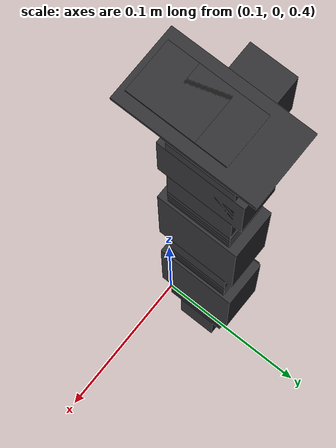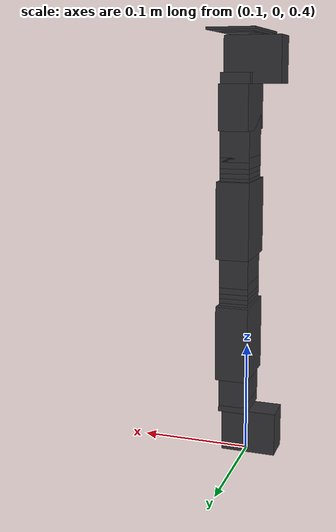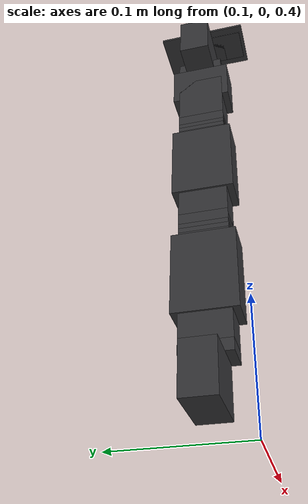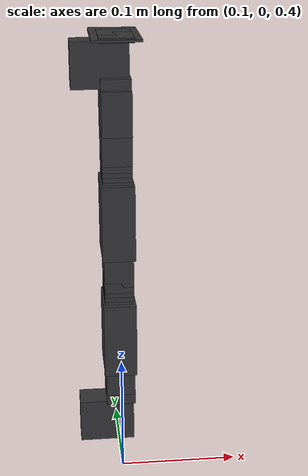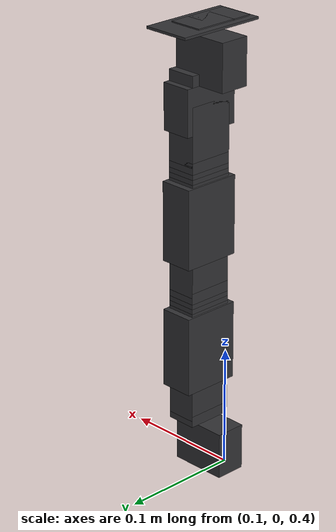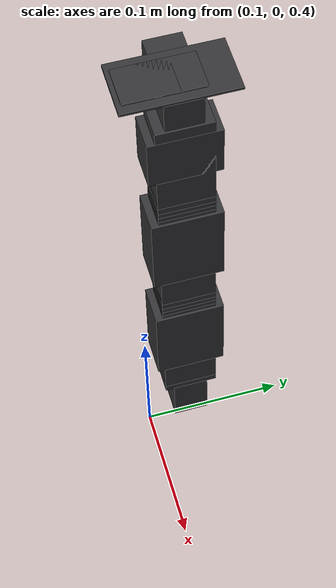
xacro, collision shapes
<?xml version="1.0"?>
<!-- Describe URDF for PhantomX Pincher Arm -->
<robot name="turtlebot_arm" xmlns:xacro="http://ros.org/wiki/xacro">

    <!-- We can configure joints velocity limit and lower/upper limits
          to allow access to different operational areas, e.g. left handed vs. right handed robot -->
    <xacro:property name="joints_vlimit" value="1.571"/>
    <xacro:property name="pan_llimit" value="-2.617"/>
    <xacro:property name="pan_ulimit" value="2.617"/>
    <xacro:property name="shoulder_llimit" value="-2.2"/>
    <xacro:property name="shoulder_ulimit" value="2.16"/>
    <xacro:property name="elbow_llimit" value="-2.42"/>
    <xacro:property name="elbow_ulimit" value="2.38"/>
    <xacro:property name="wrist_llimit" value="-1.72"/>
    <xacro:property name="wrist_ulimit" value="1.68"/>

    <!-- Included URDF Files -->

    <xacro:include filename="$(find gatlin)/urdf/pincher_arm.urdf"/>

    <!-- As we don't have here a turtlebot base, add a base_link link as its location reference -->
    <link name="base_link"/>

    <!-- Turtlebot arm macro -->
    <turtlebot_arm parent="base_link" color="Gray" gripper_color="Gray"   pincher_gripper="true" turtlebot_gripper="false">
      <!-- Place the "floating" arm at the location it should be if mounted on a turtlebot,
           as pick and place and other demos assume this location -->
      <origin xyz="0.1 0.03 0.435"/>
    </turtlebot_arm>
</robot>

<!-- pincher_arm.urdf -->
<!-- |    This document was autogenerated by xacro from pincher_arm.urdf.xacro         | -->
<!-- |    EDITING THIS FILE BY HAND IS NOT RECOMMENDED                                 | -->
<!-- Describe URDF for PhantomX Pincher Arm -->
<robot name="turtlebot_arm" xmlns:xacro="http://ros.org/wiki/xacro">
  <!-- We can configure joints velocity limit and lower/upper limits
          to allow access to different operational areas, e.g. left handed vs. right handed robot -->
  <!-- Included URDF Files -->
  <!-- Pincher arm is same as Turtlebot -->
  <material name="White">
    <color rgba="0.87 0.90 0.87 1.0"/>
  </material>
  <material name="Black">
    <color rgba="0.08 0.08 0.08 1.0"/>
  </material>
  <material name="Gray">
    <color rgba="0.2 0.2 0.21 1.0"/>
  </material>

  <xacro:macro name="turtlebot_arm" params="parent color pincher_gripper turtlebot_gripper gripper_color *origin">
    <!-- Turtlebot arm macro -->
    <link name="arm_base_link"/>
    <joint name="arm_base_joint" type="fixed">
      <insert_block name="origin"/>
      <parent link="${parent}"/>
      <child link="arm_base_link"/>
    </joint>

    <link name="gripper_link"/>
    <joint name="gripper_link_joint" type="revolute">
      <origin rpy="0 -1.57 0" xyz="0 0 0.112"/>
      <parent link="arm_wrist_flex_link"/>
      <child link="gripper_link"/>
      <limit effort="30" lower="-3.14" upper="3.14" velocity="1"/>
      <axis xyz="1 0 0"/>
    </joint>
    <joint name="arm_shoulder_pan_servo_joint" type="fixed">
      <origin rpy="1.570795 0 1.570795" xyz="0 0 0"/>
      <parent link="arm_base_link"/>
      <child link="arm_shoulder_pan_servo_link"/>
    </joint>
    <link name="arm_shoulder_pan_servo_link">
      <inertial>
        <mass value="0.055"/>
        <origin xyz="0 0 0"/>
        <inertia ixx="0.000017012" ixy="0.0" ixz="0.0" iyy="0.000013258" iyz="0.0" izz="0.000009483"/>
      </inertial>
      <visual>
        <origin rpy="0 0 0" xyz=" 0 0 0 "/>
        <geometry>
          <mesh filename="package://gatlin/meshes/ax12_box.stl" scale="0.001 0.001 0.001"/>
        </geometry>
        <material name="Gray"/>
      </visual>
      <collision>
        <origin rpy="0 0 0" xyz="0.0 0.0 -0.01241"/>
        <geometry>
          <box size="0.025 0.038 0.04762"/>
        </geometry>
      </collision>
    </link>
    <gazebo reference="arm_shoulder_pan_servo_link">
      <material>Gazebo/Black</material>
      <selfCollide>true</selfCollide>
      <gravity>true</gravity>
    </gazebo>
    <joint name="arm_shoulder_pan_joint" type="revolute">
      <origin rpy="-1.570795 1.570795 3.14159" xyz="0 0.019 0"/>
      <axis xyz="0 0 -1"/>
      <limit effort="30" lower="-2.617" upper="2.617" velocity="1.571"/>
      <dynamics friction="0.13"/>
      <parent link="arm_shoulder_pan_servo_link"/>
      <child link="arm_shoulder_pan_link"/>
    </joint>
    <link name="arm_shoulder_pan_link">
      <inertial>
        <mass value="0.008"/>
        <origin xyz="0 0 0"/>
        <inertia ixx="0.000001" ixy="0.0" ixz="0.0" iyy="0.000001" iyz="0.0" izz="0.000001"/>
      </inertial>
      <visual>
        <origin rpy="0 0 0" xyz=" 0 0 0 "/>
        <geometry>
          <mesh filename="package://gatlin/meshes/F3.stl" scale="0.001 0.001 0.001"/>
        </geometry>
        <material name="Gray"/>
      </visual>
      <collision>
        <origin rpy="0 0 0" xyz="0.0 0.0 -0.0045"/>
        <geometry>
          <box size="0.025 0.038 0.009"/>
        </geometry>
      </collision>
    </link>
    <gazebo reference="arm_shoulder_pan_link">
      <material>Gazebo/Gray</material>
      <selfCollide>true</selfCollide>
      <gravity>true</gravity>
    </gazebo>
    <joint name="arm_shoulder_lift_servo_joint" type="fixed">
      <origin rpy="0 3.14159 0" xyz="0 0 -0.0415"/>
      <parent link="arm_shoulder_pan_link"/>
      <child link="arm_shoulder_lift_servo_link"/>
    </joint>
    <link name="arm_shoulder_lift_servo_link">
      <inertial>
        <mass value="0.055"/>
        <origin xyz="0 0 0"/>
        <inertia ixx="0.000017012" ixy="0.0" ixz="0.0" iyy="0.000013258" iyz="0.0" izz="0.000009483"/>
      </inertial>
      <visual>
        <origin rpy="0 0 0" xyz=" 0 0 0 "/>
        <geometry>
          <mesh filename="package://gatlin/meshes/ax12_box.stl" scale="0.001 0.001 0.001"/>
        </geometry>
        <material name="Gray"/>
      </visual>
      <collision>
        <origin rpy="0 0 0" xyz="0.0 0.0 -0.01241"/>
        <geometry>
          <box size="0.025 0.038 0.04762"/>
        </geometry>
      </collision>
    </link>
    <gazebo reference="arm_shoulder_lift_servo_link">
      <material>Gazebo/Black</material>
      <selfCollide>true</selfCollide>
      <gravity>true</gravity>
    </gazebo>
    <joint name="arm_shoulder_lift_joint" type="revolute">
      <origin rpy="0 0 0" xyz="0 0 0"/>
      <axis xyz="0 1 0"/>
      <limit effort="30" lower="-2.617" upper="2.617" velocity="1.571"/>
      <dynamics friction="0.13"/>
      <parent link="arm_shoulder_lift_servo_link"/>
      <child link="arm_shoulder_lift_link"/>
    </joint>
    <link name="arm_shoulder_lift_link">
      <inertial>
        <mass value="0.016"/>
        <origin xyz="0 0 0"/>
        <inertia ixx="0.000001" ixy="0.0" ixz="0.0" iyy="0.000001" iyz="0.0" izz="0.000001"/>
      </inertial>
      <visual>
        <origin rpy="0 0 0" xyz=" 0 0 0 "/>
        <geometry>
          <mesh filename="package://gatlin/meshes/F4.stl" scale="0.001 0.001 0.001"/>
        </geometry>
        <material name="Gray"/>
      </visual>
      <collision>
        <origin rpy="0 0 0" xyz="0.0 0.0 0.0215"/>
        <geometry>
          <box size="0.028 0.0485 0.065"/>
        </geometry>
      </collision>
    </link>
    <gazebo reference="arm_shoulder_lift_link">
      <material>Gazebo/Gray</material>
      <selfCollide>true</selfCollide>
      <gravity>true</gravity>
    </gazebo>
    <joint name="arm_shoulder_F10_0_joint" type="fixed">
      <origin rpy="0 0 0" xyz="0 0 0.0545"/>
      <parent link="arm_shoulder_lift_link"/>
      <child link="arm_shoulder_F10_0_link"/>
    </joint>
    <link name="arm_shoulder_F10_0_link">
      <inertial>
        <mass value="0.004"/>
        <origin xyz="0 0 0"/>
        <inertia ixx="0.000001" ixy="0.0" ixz="0.0" iyy="0.000001" iyz="0.0" izz="0.000001"/>
      </inertial>
      <visual>
        <origin rpy="0 0 0" xyz=" 0 0 0 "/>
        <geometry>
          <mesh filename="package://gatlin/meshes/F10.stl" scale="0.001 0.001 0.001"/>
        </geometry>
        <material name="Gray"/>
      </visual>
      <collision>
        <origin rpy="0 0 0" xyz="0.0 0.0 0.0"/>
        <geometry>
          <box size="0.025 0.038 0.004"/>
        </geometry>
      </collision>
    </link>
    <gazebo reference="arm_shoulder_F10_0_link">
      <material>Gazebo/Gray</material>
      <selfCollide>true</selfCollide>
      <gravity>true</gravity>
    </gazebo>
    <joint name="arm_shoulder_F10_1_joint" type="fixed">
      <origin rpy="0 0 0" xyz="0 0 0.004"/>
      <parent link="arm_shoulder_F10_0_link"/>
      <child link="arm_shoulder_F10_1_link"/>
    </joint>
    <link name="arm_shoulder_F10_1_link">
      <inertial>
        <mass value="0.004"/>
        <origin xyz="0 0 0"/>
        <inertia ixx="0.000001" ixy="0.0" ixz="0.0" iyy="0.000001" iyz="0.0" izz="0.000001"/>
      </inertial>
      <visual>
        <origin rpy="0 0 0" xyz=" 0 0 0 "/>
        <geometry>
          <mesh filename="package://gatlin/meshes/F10.stl" scale="0.001 0.001 0.001"/>
        </geometry>
        <material name="Gray"/>
      </visual>
      <collision>
        <origin rpy="0 0 0" xyz="0.0 0.0 0.0"/>
        <geometry>
          <box size="0.025 0.038 0.004"/>
        </geometry>
      </collision>
    </link>
    <gazebo reference="arm_shoulder_F10_1_link">
      <material>Gazebo/Gray</material>
      <selfCollide>true</selfCollide>
      <gravity>true</gravity>
    </gazebo>
    <joint name="arm_shoulder_F10_2_joint" type="fixed">
      <origin rpy="0 0 0" xyz="0 0 0.004"/>
      <parent link="arm_shoulder_F10_1_link"/>
      <child link="arm_shoulder_F10_2_link"/>
    </joint>
    <link name="arm_shoulder_F10_2_link">
      <inertial>
        <mass value="0.004"/>
        <origin xyz="0 0 0"/>
        <inertia ixx="0.000001" ixy="0.0" ixz="0.0" iyy="0.000001" iyz="0.0" izz="0.000001"/>
      </inertial>
      <visual>
        <origin rpy="0 0 0" xyz=" 0 0 0 "/>
        <geometry>
          <mesh filename="package://gatlin/meshes/F10.stl" scale="0.001 0.001 0.001"/>
        </geometry>
        <material name="Gray"/>
      </visual>
      <collision>
        <origin rpy="0 0 0" xyz="0.0 0.0 0.0"/>
        <geometry>
          <box size="0.025 0.038 0.004"/>
        </geometry>
      </collision>
    </link>
    <gazebo reference="arm_shoulder_F10_2_link">
      <material>Gazebo/Gray</material>
      <selfCollide>true</selfCollide>
      <gravity>true</gravity>
    </gazebo>
    <joint name="arm_shoulder_F3_0_joint" type="fixed">
      <origin rpy="0 3.14159 0" xyz="0 0 0.002"/>
      <parent link="arm_shoulder_F10_2_link"/>
      <child link="arm_shoulder_F3_0_link"/>
    </joint>
    <link name="arm_shoulder_F3_0_link">
      <inertial>
        <mass value="0.005"/>
        <origin xyz="0 0 0"/>
        <inertia ixx="0.000001" ixy="0.0" ixz="0.0" iyy="0.000001" iyz="0.0" izz="0.000001"/>
      </inertial>
      <visual>
        <origin rpy="0 0 0" xyz=" 0 0 0 "/>
        <geometry>
          <mesh filename="package://gatlin/meshes/F3.stl" scale="0.001 0.001 0.001"/>
        </geometry>
        <material name="Gray"/>
      </visual>
      <collision>
        <origin rpy="0 0 0" xyz="0.0 0.0 -0.0045"/>
        <geometry>
          <box size="0.025 0.038 0.009"/>
        </geometry>
      </collision>
    </link>
    <gazebo reference="arm_shoulder_F3_0_link">
      <material>Gazebo/Gray</material>
      <selfCollide>true</selfCollide>
      <gravity>true</gravity>
    </gazebo>
    <joint name="arm_elbow_flex_servo_joint" type="fixed">
      <origin rpy="0 3.14159 0" xyz="0 0 -0.0415"/>
      <parent link="arm_shoulder_F3_0_link"/>
      <child link="arm_elbow_flex_servo_link"/>
    </joint>
    <link name="arm_elbow_flex_servo_link">
      <inertial>
        <mass value="0.055"/>
        <origin xyz="0 0 0"/>
        <inertia ixx="0.000017012" ixy="0.0" ixz="0.0" iyy="0.000013258" iyz="0.0" izz="0.000009483"/>
      </inertial>
      <visual>
        <origin rpy="0 0 0" xyz=" 0 0 0 "/>
        <geometry>
          <mesh filename="package://gatlin/meshes/ax12_box.stl" scale="0.001 0.001 0.001"/>
        </geometry>
        <material name="Gray"/>
      </visual>
      <collision>
        <origin rpy="0 0 0" xyz="0.0 0.0 -0.01241"/>
        <geometry>
          <box size="0.025 0.038 0.04762"/>
        </geometry>
      </collision>
    </link>
    <gazebo reference="arm_elbow_flex_servo_link">
      <material>Gazebo/Black</material>
      <selfCollide>true</selfCollide>
      <gravity>true</gravity>
    </gazebo>
    <joint name="arm_elbow_flex_joint" type="revolute">
      <origin rpy="0 0 0" xyz="0 0 0"/>
      <axis xyz="0 1 0"/>
      <limit effort="30" lower="-2.617" upper="2.617" velocity="1.571"/>
      <dynamics friction="0.13"/>
      <parent link="arm_elbow_flex_servo_link"/>
      <child link="arm_elbow_flex_link"/>
    </joint>
    <link name="arm_elbow_flex_link">
      <inertial>
        <mass value="0.016"/>
        <origin xyz="0 0 0"/>
        <inertia ixx="0.000001" ixy="0.0" ixz="0.0" iyy="0.000001" iyz="0.0" izz="0.000001"/>
      </inertial>
      <visual>
        <origin rpy="0 0 0" xyz=" 0 0 0 "/>
        <geometry>
          <mesh filename="package://gatlin/meshes/F4.stl" scale="0.001 0.001 0.001"/>
        </geometry>
        <material name="Gray"/>
      </visual>
      <collision>
        <origin rpy="0 0 0" xyz="0.0 0.0 0.0215"/>
        <geometry>
          <box size="0.028 0.0485 0.065"/>
        </geometry>
      </collision>
    </link>
    <gazebo reference="arm_elbow_flex_link">
      <material>Gazebo/Gray</material>
      <selfCollide>true</selfCollide>
      <gravity>true</gravity>
    </gazebo>
    <joint name="arm_elbow_F10_0_joint" type="fixed">
      <origin rpy="0 0 0" xyz="0 0 0.0545"/>
      <parent link="arm_elbow_flex_link"/>
      <child link="arm_elbow_F10_0_link"/>
    </joint>
    <link name="arm_elbow_F10_0_link">
      <inertial>
        <mass value="0.004"/>
        <origin xyz="0 0 0"/>
        <inertia ixx="0.000001" ixy="0.0" ixz="0.0" iyy="0.000001" iyz="0.0" izz="0.000001"/>
      </inertial>
      <visual>
        <origin rpy="0 0 0" xyz=" 0 0 0 "/>
        <geometry>
          <mesh filename="package://gatlin/meshes/F10.stl" scale="0.001 0.001 0.001"/>
        </geometry>
        <material name="Gray"/>
      </visual>
      <collision>
        <origin rpy="0 0 0" xyz="0.0 0.0 0.0"/>
        <geometry>
          <box size="0.025 0.038 0.004"/>
        </geometry>
      </collision>
    </link>
    <gazebo reference="arm_elbow_F10_0_link">
      <material>Gazebo/Gray</material>
      <selfCollide>true</selfCollide>
      <gravity>true</gravity>
    </gazebo>
    <joint name="arm_elbow_F10_1_joint" type="fixed">
      <origin rpy="0 0 0" xyz="0 0 0.004"/>
      <parent link="arm_elbow_F10_0_link"/>
      <child link="arm_elbow_F10_1_link"/>
    </joint>
    <link name="arm_elbow_F10_1_link">
      <inertial>
        <mass value="0.004"/>
        <origin xyz="0 0 0"/>
        <inertia ixx="0.000001" ixy="0.0" ixz="0.0" iyy="0.000001" iyz="0.0" izz="0.000001"/>
      </inertial>
      <visual>
        <origin rpy="0 0 0" xyz=" 0 0 0 "/>
        <geometry>
          <mesh filename="package://gatlin/meshes/F10.stl" scale="0.001 0.001 0.001"/>
        </geometry>
        <material name="Gray"/>
      </visual>
      <collision>
        <origin rpy="0 0 0" xyz="0.0 0.0 0.0"/>
        <geometry>
          <box size="0.025 0.038 0.004"/>
        </geometry>
      </collision>
    </link>
    <gazebo reference="arm_elbow_F10_1_link">
      <material>Gazebo/Gray</material>
      <selfCollide>true</selfCollide>
      <gravity>true</gravity>
    </gazebo>
    <joint name="arm_elbow_F10_2_joint" type="fixed">
      <origin rpy="0 0 0" xyz="0 0 0.004"/>
      <parent link="arm_elbow_F10_1_link"/>
      <child link="arm_elbow_F10_2_link"/>
    </joint>
    <link name="arm_elbow_F10_2_link">
      <inertial>
        <mass value="0.004"/>
        <origin xyz="0 0 0"/>
        <inertia ixx="0.000001" ixy="0.0" ixz="0.0" iyy="0.000001" iyz="0.0" izz="0.000001"/>
      </inertial>
      <visual>
        <origin rpy="0 0 0" xyz=" 0 0 0 "/>
        <geometry>
          <mesh filename="package://gatlin/meshes/F10.stl" scale="0.001 0.001 0.001"/>
        </geometry>
        <material name="Gray"/>
      </visual>
      <collision>
        <origin rpy="0 0 0" xyz="0.0 0.0 0.0"/>
        <geometry>
          <box size="0.025 0.038 0.004"/>
        </geometry>
      </collision>
    </link>
    <gazebo reference="arm_elbow_F10_2_link">
      <material>Gazebo/Gray</material>
      <selfCollide>true</selfCollide>
      <gravity>true</gravity>
    </gazebo>
    <joint name="arm_elbow_F3_0_joint" type="fixed">
      <origin rpy="0 3.14159 0" xyz="0 0 0.002"/>
      <parent link="arm_elbow_F10_2_link"/>
      <child link="arm_elbow_F3_0_link"/>
    </joint>
    <link name="arm_elbow_F3_0_link">
      <inertial>
        <mass value="0.005"/>
        <origin xyz="0 0 0"/>
        <inertia ixx="0.000001" ixy="0.0" ixz="0.0" iyy="0.000001" iyz="0.0" izz="0.000001"/>
      </inertial>
      <visual>
        <origin rpy="0 0 0" xyz=" 0 0 0 "/>
        <geometry>
          <mesh filename="package://gatlin/meshes/F3.stl" scale="0.001 0.001 0.001"/>
        </geometry>
        <material name="Gray"/>
      </visual>
      <collision>
        <origin rpy="0 0 0" xyz="0.0 0.0 -0.0045"/>
        <geometry>
          <box size="0.025 0.038 0.009"/>
        </geometry>
      </collision>
    </link>
    <gazebo reference="arm_elbow_F3_0_link">
      <material>Gazebo/Gray</material>
      <selfCollide>true</selfCollide>
      <gravity>true</gravity>
    </gazebo>
    <joint name="arm_wrist_flex_servo_joint" type="fixed">
      <origin rpy="0 3.14159 0" xyz="0 0 -0.0415"/>
      <parent link="arm_elbow_F3_0_link"/>
      <child link="arm_wrist_flex_servo_link"/>
    </joint>
    <link name="arm_wrist_flex_servo_link">
      <inertial>
        <mass value="0.055"/>
        <origin xyz="0 0 0"/>
        <inertia ixx="0.000017012" ixy="0.0" ixz="0.0" iyy="0.000013258" iyz="0.0" izz="0.000009483"/>
      </inertial>
      <visual>
        <origin rpy="0 0 0" xyz=" 0 0 0 "/>
        <geometry>
          <mesh filename="package://gatlin/meshes/ax12_box.stl" scale="0.001 0.001 0.001"/>
        </geometry>
        <material name="Gray"/>
      </visual>
      <collision>
        <origin rpy="0 0 0" xyz="0.0 0.0 -0.01241"/>
        <geometry>
          <box size="0.025 0.038 0.04762"/>
        </geometry>
      </collision>
    </link>
    <gazebo reference="arm_wrist_flex_servo_link">
      <material>Gazebo/Black</material>
      <selfCollide>true</selfCollide>
      <gravity>true</gravity>
    </gazebo>
    <joint name="arm_wrist_flex_joint" type="revolute">
      <origin rpy="0 0 0" xyz="0 0 0"/>
      <axis xyz="0 1 0"/>
      <limit effort="30" lower="-1.745" upper="1.745" velocity="1.571"/>
      <dynamics friction="0.13"/>
      <parent link="arm_wrist_flex_servo_link"/>
      <child link="arm_wrist_flex_link"/>
    </joint>
    <link name="arm_wrist_flex_link">
      <inertial>
        <mass value="0.010"/>
        <origin xyz="0 0 0"/>
        <inertia ixx="0.000001" ixy="0.0" ixz="0.0" iyy="0.000001" iyz="0.0" izz="0.000001"/>
      </inertial>
      <visual>
        <origin rpy="0 0 0" xyz=" 0 0 0 "/>
        <geometry>
          <mesh filename="package://gatlin/meshes/F2.stl" scale="0.001 0.001 0.001"/>
        </geometry>
        <material name="Gray"/>
      </visual>
      <collision>
        <origin rpy="0 0 0" xyz="0.0 0.0 0.00775"/>
        <geometry>
          <box size="0.025 0.0485 0.0375"/>
        </geometry>
      </collision>
    </link>
    <gazebo reference="arm_wrist_flex_link">
      <material>Gazebo/Gray</material>
      <selfCollide>true</selfCollide>
      <gravity>true</gravity>
    </gazebo>
    <joint name="arm_wrist_F3_0_joint" type="fixed">
      <origin rpy="0 3.14159 -3.14159" xyz="0 0 0.0265"/>
      <parent link="arm_wrist_flex_link"/>
      <child link="arm_wrist_F3_0_link"/>
    </joint>
    <link name="arm_wrist_F3_0_link">
      <inertial>
        <mass value="0.005"/>
        <origin xyz="0 0 0"/>
        <inertia ixx="0.000001" ixy="0.0" ixz="0.0" iyy="0.000001" iyz="0.0" izz="0.000001"/>
      </inertial>
      <visual>
        <origin rpy="0 0 0" xyz=" 0 0 0 "/>
        <geometry>
          <mesh filename="package://gatlin/meshes/F3.stl" scale="0.001 0.001 0.001"/>
        </geometry>
        <material name="Gray"/>
      </visual>
      <collision>
        <origin rpy="0 0 0" xyz="0.0 0.0 -0.0045"/>
        <geometry>
          <box size="0.025 0.038 0.009"/>
        </geometry>
      </collision>
    </link>
    <gazebo reference="arm_wrist_F3_0_link">
      <material>Gazebo/Gray</material>
      <selfCollide>true</selfCollide>
      <gravity>true</gravity>
    </gazebo>
    <joint name="gripper_servo_joint" type="fixed">
      <origin rpy="1.570795 3.14159 1.570795" xyz="0 0 -0.019"/>
      <parent link="arm_wrist_F3_0_link"/>
      <child link="gripper_servo_link"/>
    </joint>
    <link name="gripper_servo_link">
      <inertial>
        <mass value="0.055"/>
        <origin xyz="0 0 0"/>
        <inertia ixx="0.000017012" ixy="0.0" ixz="0.0" iyy="0.000013258" iyz="0.0" izz="0.000009483"/>
      </inertial>
      <visual>
        <origin rpy="0 0 0" xyz=" 0 0 0 "/>
        <geometry>
          <mesh filename="package://gatlin/meshes/ax12_box.stl" scale="0.001 0.001 0.001"/>
        </geometry>
        <material name="Gray"/>
      </visual>
      <collision>
        <origin rpy="0 0 0" xyz="0.0 0.0 -0.01241"/>
        <geometry>
          <box size="0.025 0.038 0.04762"/>
        </geometry>
      </collision>
    </link>
    <gazebo reference="gripper_servo_link">
      <material>Gazebo/Black</material>
      <selfCollide>true</selfCollide>
      <gravity>true</gravity>
    </gazebo>
    <joint name="gripper_finger_base_joint" type="fixed">
      <origin rpy="1.570795 -3.14159 1.570795" xyz="0.01  0.038 0"/>
      <parent link="gripper_servo_link"/>
      <child link="gripper_finger_base_link"/>
    </joint>
    <link name="gripper_finger_base_link">
      <inertial>
        <mass value="0.00001"/>
        <origin xyz="0 0 0"/>
        <inertia ixx="1.0" ixy="0.0" ixz="0.0" iyy="1.0" iyz="0.0" izz="1.0"/>
      </inertial>
      <visual>
        <origin rpy="3.14159 -1.570795 1.570795" xyz="0.016 0 -.015 "/>
        <geometry>
          <mesh filename="package://gatlin/meshes/pincher_finger_base.stl" scale=".01 .01 .01"/>
        </geometry>
        <material name="Gray"/>
      </visual>
      <collision>
        <origin rpy="0 0 0" xyz="0.015 0 -0.0135"/>
        <geometry>
          <box size="0.002 0.040 0.075"/>
        </geometry>
      </collision>
    </link>
    <gazebo reference="gripper_finger_base_link">
      <material>Gazebo/Gray</material>
      <selfCollide>true</selfCollide>
      <gravity>true</gravity>
    </gazebo>
    <joint name="gripper_joint" type="prismatic">
      <origin rpy="0 0 0" xyz="0 0 0"/>
      <axis xyz="1 0 0"/>
      <limit effort="30" lower="0.002" upper="0.031" velocity="0.5"/>
      <parent link="gripper_servo_link"/>
      <child link="gripper_active_link"/>
    </joint>
    <link name="gripper_active_link">
      <inertial>
        <mass value="0.00001"/>
        <origin xyz="0 0 0"/>
        <inertia ixx="1.0" ixy="0.0" ixz="0.0" iyy="1.0" iyz="0.0" izz="1.0"/>
      </inertial>
      <visual>
        <origin rpy="-1.570795 0 0" xyz="-0.02 0.023 0"/>
        <geometry>
          <mesh filename="package://gatlin/meshes/pincher_finger.stl" scale=".01 .01 .01"/>
        </geometry>
        <material name="Gray"/>
      </visual>
      <collision>
        <origin rpy="-1.570795 0 0" xyz="-0.02 0.023 0"/>
        <geometry>
          <box size="0.036 0.028 0.004"/>
        </geometry>
      </collision>
    </link>
    <gazebo reference="gripper_active_link">
      <material>Gazebo/Gray</material>
      <selfCollide>true</selfCollide>
      <gravity>true</gravity>
    </gazebo>
    <joint name="gripper2_joint" type="fixed">
      <parent link="gripper_servo_link"/>
      <child link="gripper_active2_link"/>
    </joint>
    <link name="gripper_active2_link">
      <inertial>
        <mass value="0.00001"/>
        <origin xyz="0 0 0"/>
        <inertia ixx="1.0" ixy="0.0" ixz="0.0" iyy="1.0" iyz="0.0" izz="1.0"/>
      </inertial>
      <visual>
        <origin rpy="-1.570795 3.14159 0" xyz="-0.02 0.023 0"/>
        <geometry>
          <mesh filename="package://gatlin/meshes/pincher_finger.stl" scale=".01 .01 .01"/>
        </geometry>
        <material name="Gray"/>
      </visual>
      <collision>
        <origin rpy="-1.570795 3.14159 0" xyz="-0.02 0.023 0"/>
        <geometry>
          <box size="0.036 0.028 0.004"/>
        </geometry>
      </collision>
    </link>
    <gazebo reference="gripper_active2_link">
      <material>Gazebo/Gray</material>
      <selfCollide>true</selfCollide>
      <gravity>true</gravity>
    </gazebo>

  </xacro:macro>

</robot>
